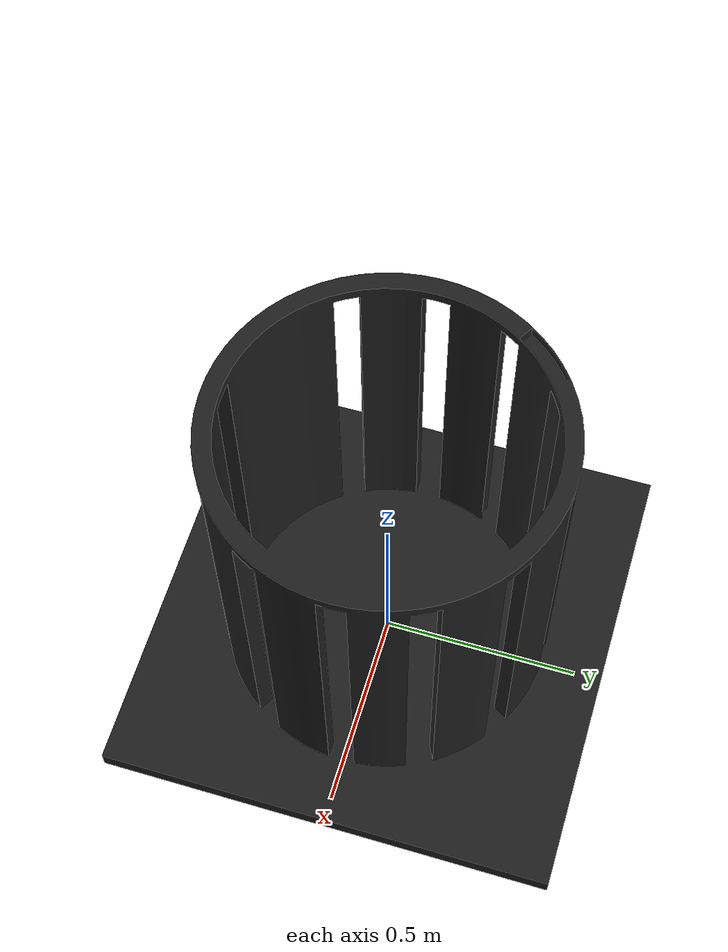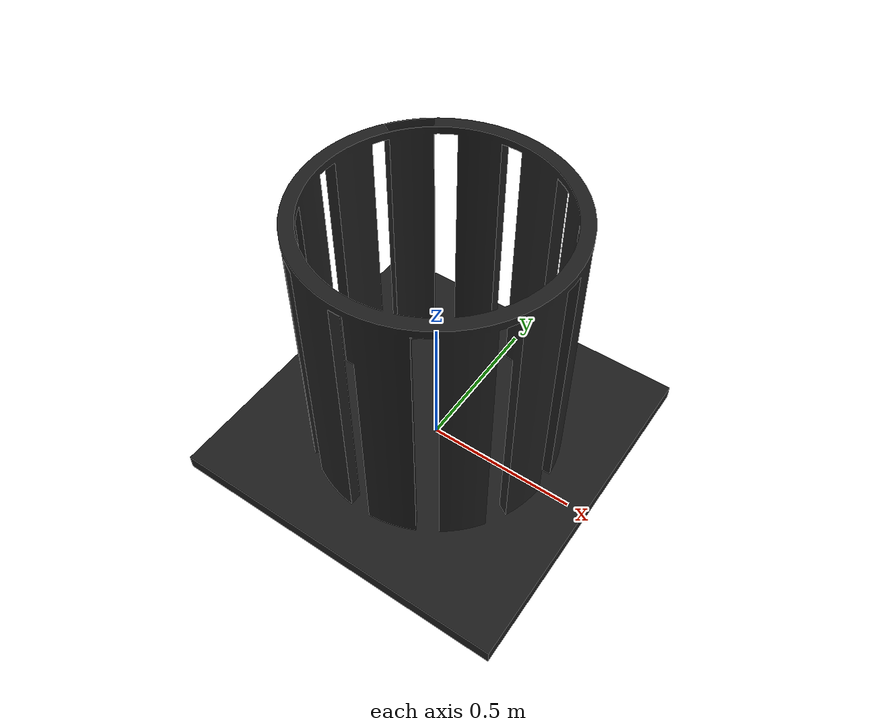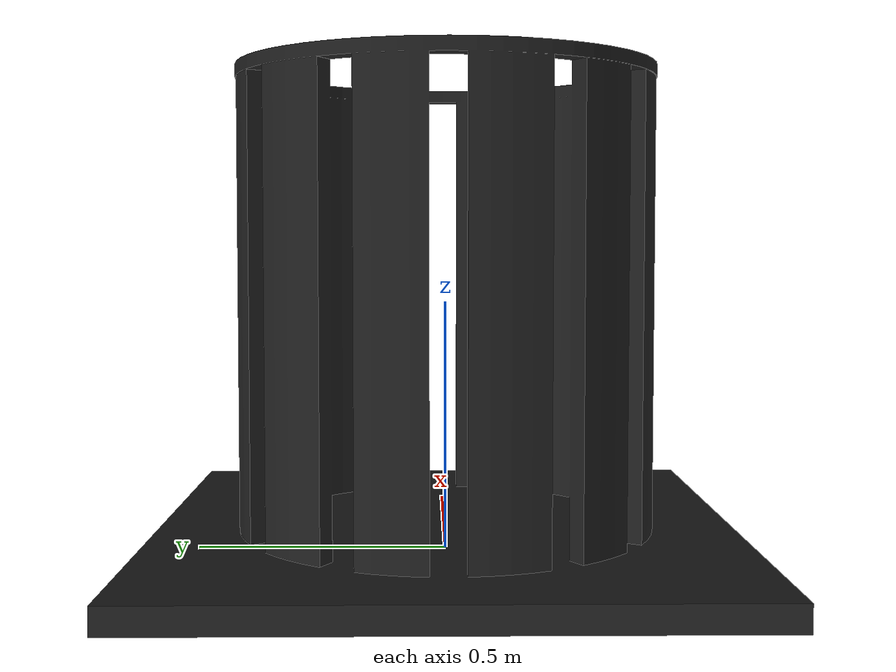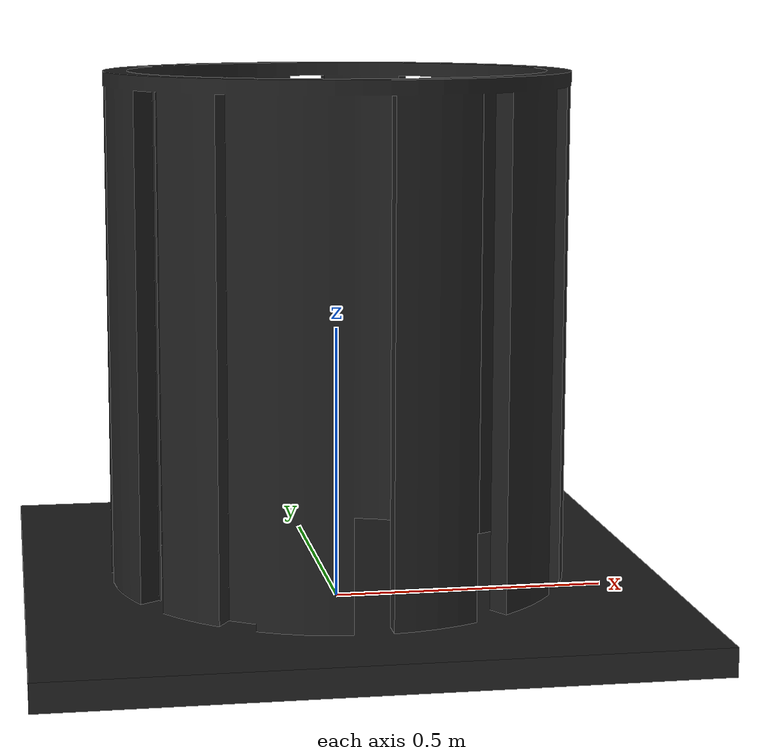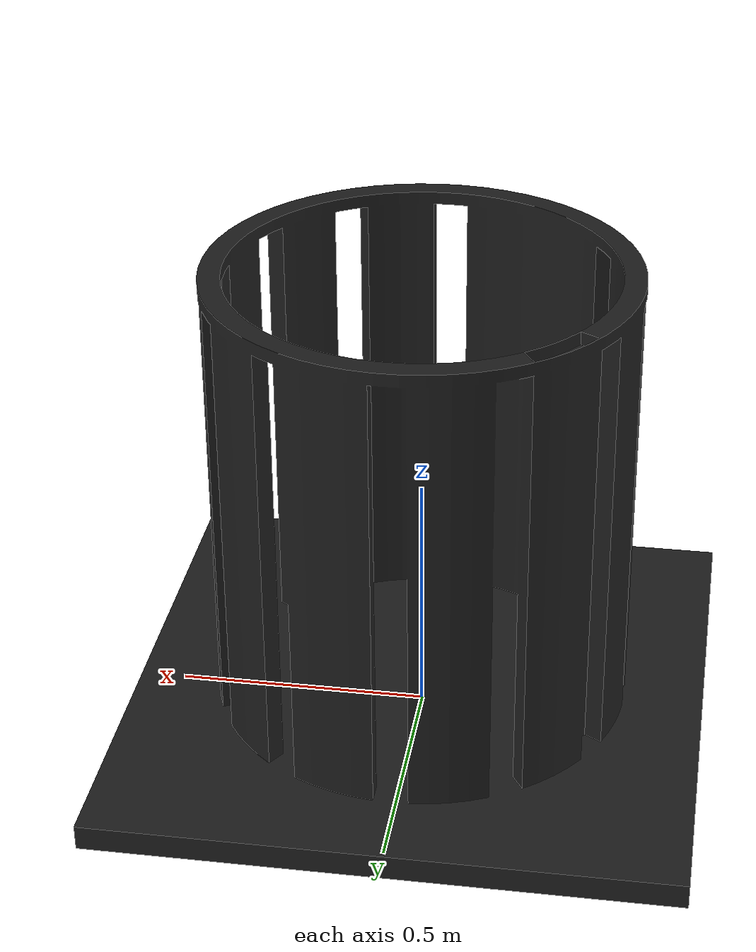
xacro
<?xml version="1.0"?>
<robot name="rjje_arm" xmlns:xacro="http://www.ros.org/wiki/xacro">
  <xacro:macro name="m_link_mesh" params="name origin_xyz origin_rpy meshfile meshscale mass ixx ixy ixz iyy iyz izz">
    <link name="${name}">
      <inertial>
        <mass value="${mass}" />
        <origin rpy="${origin_rpy}" xyz="${origin_xyz}" />
        <inertia ixx="${ixx}" ixy="${ixy}" ixz="${ixz}" iyy="${iyy}" iyz="${iyz}" izz="${izz}" />
      </inertial>
      <collision>
        <origin rpy="${origin_rpy}" xyz="${origin_xyz}" />
        <geometry>
          <mesh filename="${meshfile}" scale="${meshscale}"/>
        </geometry>
      </collision>
      <visual>
        <origin rpy="${origin_rpy}" xyz="${origin_xyz}" />
        <geometry>
          <mesh filename="${meshfile}" scale="${meshscale}"/>
        </geometry>
        <material name="light_black"/>
      </visual>
    </link>
  </xacro:macro>

  <xacro:macro name="m_joint" params="name type axis_xyz origin_rpy origin_xyz parent child limit_e limit_l limit_u limit_v">
    <joint name="${name}" type="${type}">
      <axis xyz="${axis_xyz}"/>
      <limit effort="${limit_e}" lower="${limit_l}" upper="${limit_u}" velocity="${limit_v}" />
      <origin rpy="${origin_rpy}" xyz="${origin_xyz}"/>
      <parent link="${parent}" />
      <child link="${child}"/>
    </joint>
  </xacro:macro>

  <!-- Instances -->

  <link name="world">
  </link>

  <xacro:m_link_mesh
    name="base_link"
    origin_xyz="0.0 0.0 0.0"
    origin_rpy="0.0 0.0 0.0"
    meshfile="package://rjje_arm/meshes/cup_holder.stl"
    meshscale="0.1 0.1 0.1"
    mass="157.633"
    ixx="13.235" ixy="0" ixz="0"
    iyy="13.235" iyz="0"
    izz="9.655"
    />

  <xacro:m_joint name="$base_link_world" type="revolute"
         axis_xyz="0 0 1"
         origin_rpy="0 0 0" origin_xyz="0 0 0.0"
         parent="world" child="base_link"
         limit_e="1000" limit_l="0" limit_u="0.5" limit_v="0.5" />

</robot>
